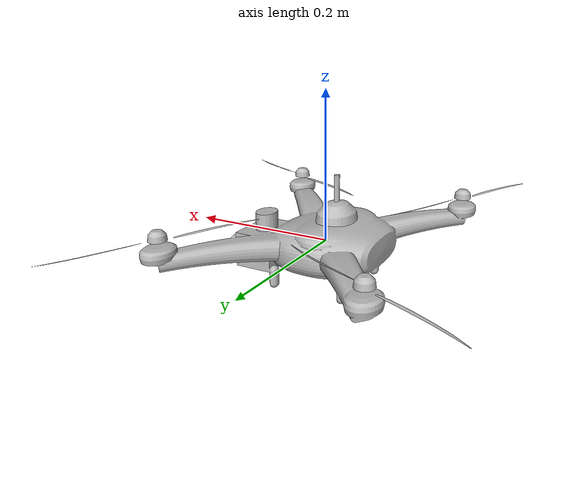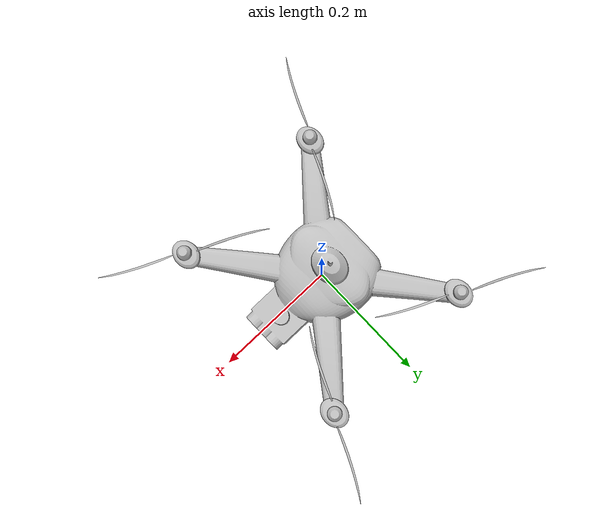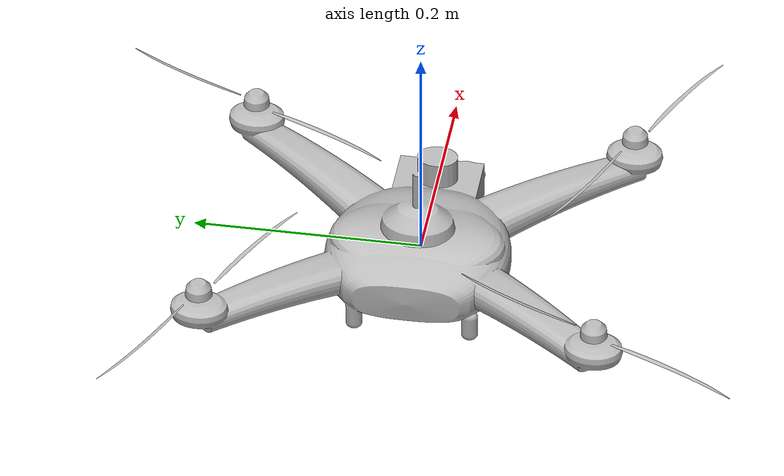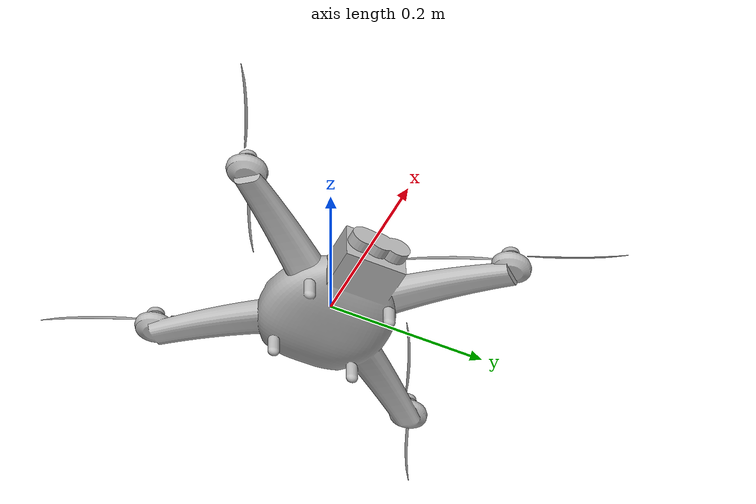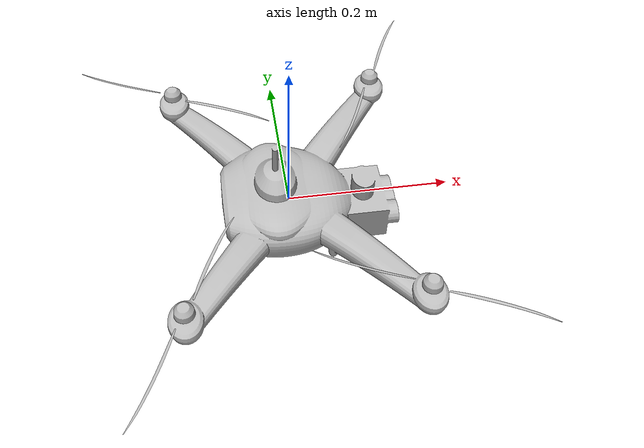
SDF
<?xml version="1.0" ?>
<sdf version="1.9">
  <model name="matrice4e">
    <!-- 자동 생성: src/gazebo_export.py -->
    <!-- 메쉬: src/drone_cad.py (trimesh + manifold3d + shapely + scipy) -->
    <!-- 제원 출처: docs/drone_specs_2026.json (공식 DJI + 적대적 검증) -->
    <!-- ⚠ 질량 분포/관성텐서는 **메쉬에서 계산한 추정치**다. DJI 는 공개하지 않는다. -->
    <!--   총질량만 공식 TOW(1219 g)에 맞췄고, 분포는 부위별 밀도가 정했다. -->

    <link name="base_link">
      <pose>0 0 0 0 0 0</pose>
      <inertial>
        <mass>1.211958</mass>
        <pose>0.010410 -0.000000 0.001837 0 0 0</pose>
        <inertia>
          <ixx>0.00754221</ixx> <ixy>0.00000002</ixy> <ixz>0.00043552</ixz>
          <iyy>0.00681251</iyy> <iyz>-0.00000001</iyz> <izz>0.01361840</izz>
        </inertia>
      </inertial>
      <collision name="base_collision">
        <geometry><mesh><uri>model://matrice4e/meshes/base_link_collision.stl</uri></mesh></geometry>
      </collision>
      <visual name="base_visual">
        <geometry><mesh><uri>model://matrice4e/meshes/base_link.stl</uri></mesh></geometry>
      </visual>
    </link>

    <link name="rotor_0">
      <pose>0.133818 0.168907 0.032830 0 0 0.994838</pose>
      <inertial>
        <mass>0.001761</mass>
        <inertia>
          <ixx>0.0000000741</ixx> <ixy>0</ixy> <ixz>0</ixz>
          <iyy>0.0000005338</iyy> <iyz>0</iyz> <izz>0.0000005674</izz>
        </inertia>
      </inertial>
      <collision name="rotor_collision">
        <geometry><mesh><uri>model://matrice4e/meshes/rotor_collision.stl</uri></mesh></geometry>
      </collision>
      <visual name="rotor_visual">
        <geometry><mesh><uri>model://matrice4e/meshes/rotor.stl</uri></mesh></geometry>
      </visual>
    </link>
    <joint name="rotor_0_joint" type="revolute">
      <parent>base_link</parent>
      <child>rotor_0</child>
      <axis><xyz>0 0 1</xyz><limit><lower>-1e16</lower><upper>1e16</upper></limit></axis>
    </joint>
    <plugin filename="gz-sim-multicopter-motor-model-system" name="gz::sim::systems::MulticopterMotorModel">
      <jointName>rotor_0_joint</jointName>
      <linkName>rotor_0</linkName>
      <turningDirection>ccw</turningDirection>
      <timeConstantUp>0.0125</timeConstantUp>
      <timeConstantDown>0.025</timeConstantDown>
      <maxRotVelocity>785.40</maxRotVelocity>
      <motorConstant>1.887296e-05</motorConstant>
      <momentConstant>0.0164</momentConstant>
      <rotorDragCoefficient>8.064280e-05</rotorDragCoefficient>
      <rollingMomentCoefficient>1.0e-06</rollingMomentCoefficient>
      <rotorVelocitySlowdownSim>10</rotorVelocitySlowdownSim>
      <motorNumber>0</motorNumber>
      <commandSubTopic>command/motor_speed</commandSubTopic>
      <motorType>velocity</motorType>
    </plugin>

    <link name="rotor_1">
      <pose>-0.133818 0.168907 0.032830 0 0 2.565634</pose>
      <inertial>
        <mass>0.001761</mass>
        <inertia>
          <ixx>0.0000000741</ixx> <ixy>0</ixy> <ixz>0</ixz>
          <iyy>0.0000005338</iyy> <iyz>0</iyz> <izz>0.0000005674</izz>
        </inertia>
      </inertial>
      <collision name="rotor_collision">
        <geometry><mesh><uri>model://matrice4e/meshes/rotor_collision.stl</uri></mesh></geometry>
      </collision>
      <visual name="rotor_visual">
        <geometry><mesh><uri>model://matrice4e/meshes/rotor.stl</uri></mesh></geometry>
      </visual>
    </link>
    <joint name="rotor_1_joint" type="revolute">
      <parent>base_link</parent>
      <child>rotor_1</child>
      <axis><xyz>0 0 1</xyz><limit><lower>-1e16</lower><upper>1e16</upper></limit></axis>
    </joint>
    <plugin filename="gz-sim-multicopter-motor-model-system" name="gz::sim::systems::MulticopterMotorModel">
      <jointName>rotor_1_joint</jointName>
      <linkName>rotor_1</linkName>
      <turningDirection>cw</turningDirection>
      <timeConstantUp>0.0125</timeConstantUp>
      <timeConstantDown>0.025</timeConstantDown>
      <maxRotVelocity>785.40</maxRotVelocity>
      <motorConstant>1.887296e-05</motorConstant>
      <momentConstant>0.0164</momentConstant>
      <rotorDragCoefficient>8.064280e-05</rotorDragCoefficient>
      <rollingMomentCoefficient>1.0e-06</rollingMomentCoefficient>
      <rotorVelocitySlowdownSim>10</rotorVelocitySlowdownSim>
      <motorNumber>1</motorNumber>
      <commandSubTopic>command/motor_speed</commandSubTopic>
      <motorType>velocity</motorType>
    </plugin>

    <link name="rotor_2">
      <pose>-0.133818 -0.168907 0.032830 0 0 4.136430</pose>
      <inertial>
        <mass>0.001761</mass>
        <inertia>
          <ixx>0.0000000741</ixx> <ixy>0</ixy> <ixz>0</ixz>
          <iyy>0.0000005338</iyy> <iyz>0</iyz> <izz>0.0000005674</izz>
        </inertia>
      </inertial>
      <collision name="rotor_collision">
        <geometry><mesh><uri>model://matrice4e/meshes/rotor_collision.stl</uri></mesh></geometry>
      </collision>
      <visual name="rotor_visual">
        <geometry><mesh><uri>model://matrice4e/meshes/rotor.stl</uri></mesh></geometry>
      </visual>
    </link>
    <joint name="rotor_2_joint" type="revolute">
      <parent>base_link</parent>
      <child>rotor_2</child>
      <axis><xyz>0 0 1</xyz><limit><lower>-1e16</lower><upper>1e16</upper></limit></axis>
    </joint>
    <plugin filename="gz-sim-multicopter-motor-model-system" name="gz::sim::systems::MulticopterMotorModel">
      <jointName>rotor_2_joint</jointName>
      <linkName>rotor_2</linkName>
      <turningDirection>ccw</turningDirection>
      <timeConstantUp>0.0125</timeConstantUp>
      <timeConstantDown>0.025</timeConstantDown>
      <maxRotVelocity>785.40</maxRotVelocity>
      <motorConstant>1.887296e-05</motorConstant>
      <momentConstant>0.0164</momentConstant>
      <rotorDragCoefficient>8.064280e-05</rotorDragCoefficient>
      <rollingMomentCoefficient>1.0e-06</rollingMomentCoefficient>
      <rotorVelocitySlowdownSim>10</rotorVelocitySlowdownSim>
      <motorNumber>2</motorNumber>
      <commandSubTopic>command/motor_speed</commandSubTopic>
      <motorType>velocity</motorType>
    </plugin>

    <link name="rotor_3">
      <pose>0.133818 -0.168907 0.032830 0 0 5.707227</pose>
      <inertial>
        <mass>0.001761</mass>
        <inertia>
          <ixx>0.0000000741</ixx> <ixy>0</ixy> <ixz>0</ixz>
          <iyy>0.0000005338</iyy> <iyz>0</iyz> <izz>0.0000005674</izz>
        </inertia>
      </inertial>
      <collision name="rotor_collision">
        <geometry><mesh><uri>model://matrice4e/meshes/rotor_collision.stl</uri></mesh></geometry>
      </collision>
      <visual name="rotor_visual">
        <geometry><mesh><uri>model://matrice4e/meshes/rotor.stl</uri></mesh></geometry>
      </visual>
    </link>
    <joint name="rotor_3_joint" type="revolute">
      <parent>base_link</parent>
      <child>rotor_3</child>
      <axis><xyz>0 0 1</xyz><limit><lower>-1e16</lower><upper>1e16</upper></limit></axis>
    </joint>
    <plugin filename="gz-sim-multicopter-motor-model-system" name="gz::sim::systems::MulticopterMotorModel">
      <jointName>rotor_3_joint</jointName>
      <linkName>rotor_3</linkName>
      <turningDirection>cw</turningDirection>
      <timeConstantUp>0.0125</timeConstantUp>
      <timeConstantDown>0.025</timeConstantDown>
      <maxRotVelocity>785.40</maxRotVelocity>
      <motorConstant>1.887296e-05</motorConstant>
      <momentConstant>0.0164</momentConstant>
      <rotorDragCoefficient>8.064280e-05</rotorDragCoefficient>
      <rollingMomentCoefficient>1.0e-06</rollingMomentCoefficient>
      <rotorVelocitySlowdownSim>10</rotorVelocitySlowdownSim>
      <motorNumber>3</motorNumber>
      <commandSubTopic>command/motor_speed</commandSubTopic>
      <motorType>velocity</motorType>
    </plugin>

  </model>
</sdf>
